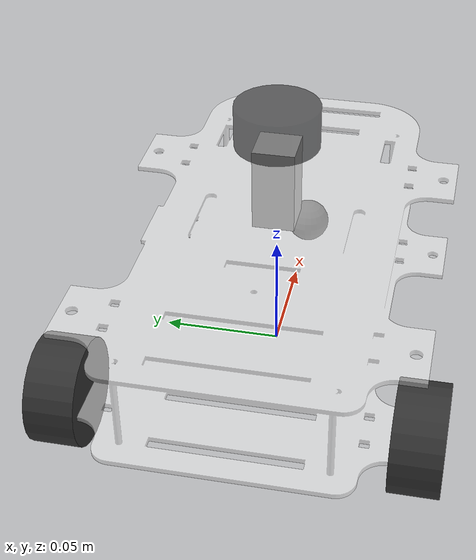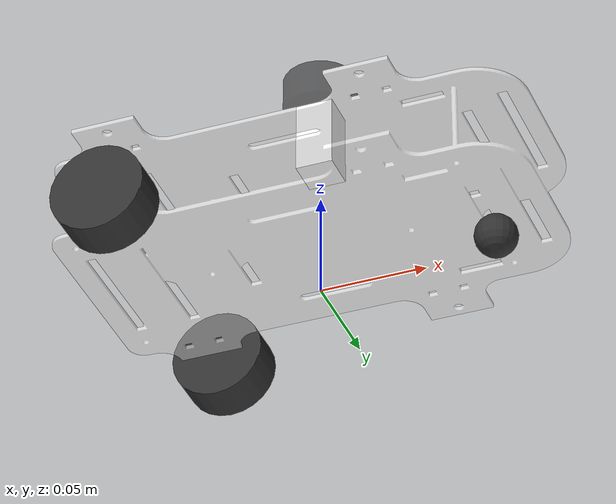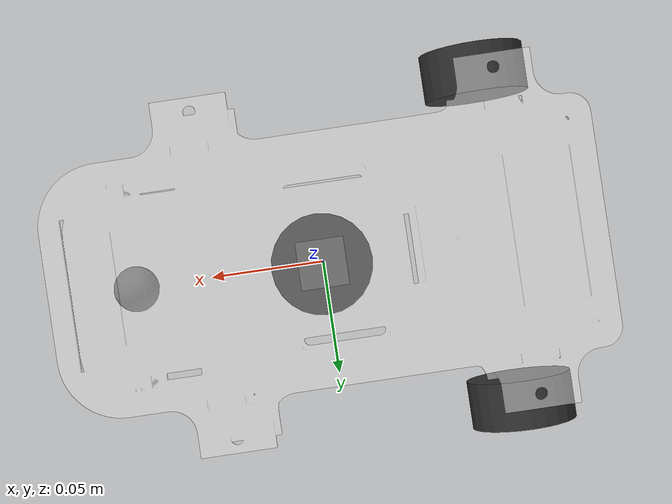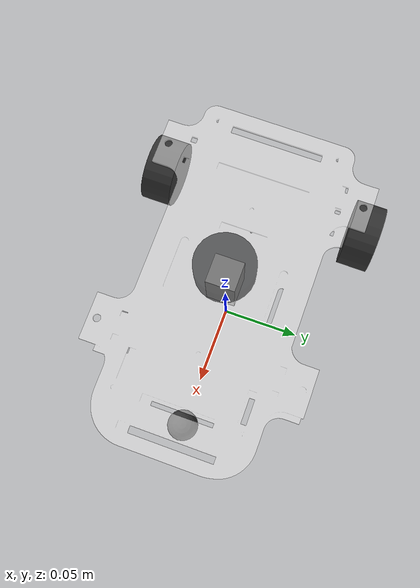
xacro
<?xml version="1.0"?>
<robot xmlns:xacro="http://www.ros.org/wiki/xacro" name="uds_bot">

    <xacro:property name="M_PI" value="3.1415926535897931" />

    <xacro:arg name="robot_name" default="uds_robot"/>
    <xacro:arg name="prefix" default=""/>
    <xacro:arg name="use_gazebo" default="false"/>

    <xacro:include filename="$(find uds_description)/urdf/body/uds_base.urdf.xacro"/>
    <xacro:include filename="$(find uds_description)/urdf/sensors/lidar.urdf.xacro"/>
    <xacro:include filename="$(find uds_description)/urdf/body/uds_wheel.urdf.xacro"/>
    <xacro:include filename="$(find uds_description)/urdf/body/uds_castor.urdf.xacro"/>
    <xacro:include filename="$(find uds_description)/urdf/ros2_control/uds_ros2_control.xacro"/>

    <xacro:uds_base
    prefix="$(arg prefix)"
    z_off="${wheel_radius}"/>  <!--Wheel Radius-->

    <xacro:lidar_sensor
    prefix="$(arg prefix)"
    z_off="${lidar_height}"/>

    <xacro:uds_wheel
      prefix="$(arg prefix)"
      side="left"
      x_reflect="-1"
      y_reflect="1"/>

    <xacro:uds_wheel
      prefix="$(arg prefix)"
      side="right"
      x_reflect="-1"
      y_reflect="-1"/>

    <xacro:uds_castor
      prefix="$(arg prefix)"/>

</robot>

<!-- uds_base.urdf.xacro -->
<robot xmlns:xacro="http://www.ros.org/wiki/xacro">
<xacro:property name="base_width" value="0.14" />
<xacro:property name="base_length" value="0.22" />
<xacro:property name="base_height" value="0.002" />
<xacro:property name="com_x" value="0.00489" />     <!--Center of Mass-->
<xacro:property name="com_y" value="-0.00007433" />
<xacro:property name="com_z" value="0.001" />
<xacro:property name="base_mass" value="1.5" />

<xacro:macro name="uds_base" params="prefix z_off">
    <link name="base_footprint"/>
    <link name="${prefix}base_link">
        <visual>
            <geometry>
                <mesh filename="package://uds_description/meshes/assembled.stl" scale="0.001 0.001 0.001"/>
            </geometry>
            <origin xyz="0 0 0" rpy="0 0 ${pi/2}"/>
            <material name="white">
                <color rgba="1 1 1 0.5"/>
            </material>
            <origin xyz="0 0 0" rpy="0 0 0"/>
        </visual>
        <collision>
            <geometry>
                <box size="${base_length} ${base_width} ${base_height}"/>
            </geometry>
            <origin xyz="0 0 0" rpy="0 0 0"/>
        </collision>
        <inertial>
            <origin xyz="${com_x} ${com_y} ${com_z}" rpy="0 0 0"/>
            <mass value="${base_mass}"/>
            <inertia ixx="${(1/12) * base_mass * ((base_width * base_width) + (base_height * base_height))}"  ixy="0.0"  ixz="0.0"
                     iyy="${(1/12) * base_mass * ((base_length * base_length) + (base_height * base_height))}"  iyz="0.0"
                     izz="${(1/12) * base_mass * ((base_length * base_length) + (base_width * base_width))}"/>
        </inertial>
    </link>
    <gazebo reference="${prefix}base_link">
        <visual>
            <material>
                <ambient>0.5 0.5 0.5 0.5</ambient>
                <diffuse>0.5 0.5 0.5 0.5</diffuse>
                <specular>0.2 0.2 0.2 0.5</specular>
            </material>
        </visual>
    </gazebo>
    <joint name="${prefix}base_joint" type="fixed">
        <parent link="${prefix}base_footprint"/>
        <child link="${prefix}base_link"/>
        <origin xyz="0 0 ${z_off}" rpy="0 0 0"/>
  </joint>
</xacro:macro>
</robot>

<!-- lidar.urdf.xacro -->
<robot xmlns:xacro="http://www.ros.org/wiki/xacro">
  <xacro:property name="M_PI" value="3.1415926535897931" />
  <xacro:property name="lidar_mass" value="0.10321" />
  <xacro:property name="lidar_length" value="0.035" />
  <xacro:property name="lidar_width" value="0.035" />
  <xacro:property name="lidar_height" value="0.035" />
  <xacro:property name="com_x" value="-0.000082" />     <!--Center of Mass-->
  <xacro:property name="com_y" value="-0.000041" />
  <xacro:property name="com_z" value="0.010541" />
  <xacro:property name="stand_height" value="${lidar_height}" />

  <xacro:macro name="lidar_sensor" params="prefix z_off">
    <link name="lidar_stand_link">
        <visual>
        <origin xyz="0 0 0" rpy="0 0 0"/>
        <geometry>
          <box size="${0.5*lidar_length} ${0.5*lidar_width} ${stand_height}"/>
        </geometry>
        <material name="white">
          <color rgba="1 1 1 1.0"/>
        </material>
      </visual>

      <inertial>
          <origin xyz="${com_x} ${com_y} ${com_z}" rpy="0 0 0"/>
          <mass value="${base_mass}"/>
          <inertia ixx="${(1/12) * lidar_mass * ((lidar_width * lidar_width) + (lidar_height * lidar_height))}"  ixy="0.0"  ixz="0.0"
                    iyy="${(1/12) * lidar_mass * ((lidar_length * lidar_length) + (lidar_height * lidar_height))}"  iyz="0.0"
                    izz="${(1/12) * lidar_mass * ((lidar_length * lidar_length) + (lidar_width * lidar_width))}"/>
      </inertial>
    </link>

    <joint name="$lidar_stand_joint" type="fixed">
      <parent link="base_link"/>
      <child link="lidar_stand_link"/>
      <origin xyz="0 0 ${stand_height/2 + 0.04 + 0.002}" rpy="0 0 0"/>  <!-- 1/2 stand_height + stud_length + width of chasis-->
    </joint>
    <link name="lidar_link">
      <visual>
        <origin xyz="0 0 0" rpy="0 0 0"/>
        <geometry>
          <cylinder radius="${lidar_width/2}" length="${lidar_height/2}"/>
        </geometry>
        <material name="black">
          <color rgba="0 0 0 0.5"/>
        </material>
      </visual>

      <inertial>
          <origin xyz="${com_x} ${com_y} ${com_z}" rpy="0 0 0"/>
          <mass value="${lidar_mass*1.25}"/>
          <inertia ixx="${(1/12) * lidar_mass * ((lidar_width * lidar_width) + (lidar_height * lidar_height))}"  ixy="0.0"  ixz="0.0"
                    iyy="${(1/12) * lidar_mass * ((lidar_length * lidar_length) + (lidar_height * lidar_height))}"  iyz="0.0"
                    izz="${(1/12) * lidar_mass * ((lidar_length * lidar_length) + (lidar_width * lidar_width))}"/>
      </inertial>
    </link>

    <joint name="${prefix}lidar_joint" type="fixed">
      <parent link="lidar_stand_link"/>
      <child link="lidar_link"/>
      <origin xyz="0 0 ${stand_height/2 + lidar_height/4}" rpy="0 0 0"/>
    </joint>
  </xacro:macro>

  <gazebo reference="lidar_link">
      <sensor name="laser" type="gpu_lidar">
         <pose> 0 0 0 0 0 0 </pose>
         <always_on>true</always_on>
         <visualize>true</visualize>
         <update_rate>10</update_rate>
         <topic>scan</topic>
         <gz_frame_id>lidar_link</gz_frame_id>
         <lidar>
            <scan>
               <horizontal>
               <samples>360</samples>
               <min_angle>-3.14</min_angle>
               <max_angle>3.14</max_angle>
               </horizontal>
            </scan>
            <range>
               <min>0.3</min>
               <max>12</max>
            </range>
         </lidar>
      </sensor>
   </gazebo>
</robot>

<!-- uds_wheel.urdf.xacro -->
<robot xmlns:xacro="http://www.ros.org/wiki/xacro">

  <xacro:property name="wheel_radius" value="0.022" />
  <xacro:property name="wheel_offset" value="0.0000" />

  <xacro:property name="wheel_separation" value="0.134" />
  <xacro:property name="wheel_width" value="0.02" />
  <xacro:property name="wheel_mass" value="0.1" />
  <xacro:property name="wheel_xoff" value="0.075" />
  <xacro:property name="wheel_yoff" value="0.070" />

  <xacro:macro name="uds_wheel" params="prefix side x_reflect y_reflect">
    <link name="${prefix}${side}_wheel_link">
      <visual>
        <origin xyz="0 0 0" rpy="${pi/2} 0 0"/>
        <geometry>
          <cylinder radius="${wheel_radius + wheel_offset}" length="${wheel_width}"/>
        </geometry>
        <material name="dark_gray">
          <color rgba="0.2 0.2 0.2 1.0"/>
        </material>
      </visual>

      <collision>
        <origin xyz="0 0 0" rpy="${pi/2} 0 0"/>
        <geometry>
          <cylinder radius="${wheel_radius + wheel_offset}" length="${wheel_width}"/>
        </geometry>
      </collision>

      <inertial>
        <origin xyz="0 0 0" rpy="0 0 0"/>
        <mass value="${wheel_mass}"/>
        <inertia
          ixx="${(wheel_mass/12.0) * (3*wheel_radius*wheel_radius + wheel_width*wheel_width)}" ixy="0" ixz="0"
          iyy="${(wheel_mass/2.0) * (wheel_radius*wheel_radius)}" iyz="0"
          izz="${(wheel_mass/12.0) * (3*wheel_radius*wheel_radius + wheel_width*wheel_width)}"/>
      </inertial>
    </link>

    <joint name="${prefix}${side}_wheel_joint" type="continuous">
      <axis xyz="0 1 0"/>
      <parent link="${prefix}base_link"/>
      <child link="${prefix}${side}_wheel_link"/>
      <origin xyz="${x_reflect*(wheel_xoff) } ${y_reflect*(wheel_yoff)} 0" rpy="0 0 0"/>
    </joint>
  </xacro:macro>

  <gazebo reference="base_link">
      <mu1>1.0</mu1>
      <mu2>1.0</mu2>
  </gazebo>

  <gazebo reference="right_wheel_link">
      <mu1>1.0</mu1>
      <mu2>1.0</mu2>
  </gazebo>

  <gazebo reference="left_wheel_link">
      <mu1>1.0</mu1>
      <mu2>1.0</mu2>
  </gazebo>

  <!-- Caster Wheels -->
  <gazebo reference="castor_link">
      <mu1>0.000001</mu1>
      <mu2>0.000001</mu2>
  </gazebo>
</robot>

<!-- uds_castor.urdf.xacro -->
<robot xmlns:xacro="http://www.ros.org/wiki/xacro">
<xacro:property name="castor_mass" value="0.5" />
<xacro:property name="castor_xoff" value="0.0825" />
<xacro:property name="castor_yoff" value="0.0" />

<xacro:macro name="uds_castor" params="prefix">
    <link name="${prefix}castor_link">
      <visual>
        <origin xyz="0 0 0" rpy="0 0 0"/>
        <geometry>
          <sphere radius="${(wheel_radius-base_height)/2}"/>
        </geometry>
        <material name="dark_gray">
          <color rgba="0.2 0.2 0.2 1"/>
        </material>
      </visual>

      <collision>
        <origin xyz="0 0 0" rpy="0 0 0"/>
        <geometry>
          <sphere radius="${(wheel_radius-base_height)/2}"/>
        </geometry>
      </collision>

        <inertial>
            <origin xyz="0 0 0" rpy="0 0 0"/>
            <mass value="${castor_mass}"/>
            <inertia
            ixx="${(2.0/5.0) * castor_mass * wheel_radius/2 * wheel_radius/2}" ixy="0" ixz="0"
            iyy="${(2.0/5.0) * castor_mass * wheel_radius/2 * wheel_radius/2}" iyz="0"
            izz="${(2.0/5.0) * castor_mass * wheel_radius/2 * wheel_radius/2}"/>
      </inertial>
    </link>

    <joint name="${prefix}castor_joint" type="fixed">
      <parent link="${prefix}base_link"/>
      <child link="${prefix}castor_link"/>
      <origin xyz="${castor_xoff} ${castor_yoff} ${-(wheel_radius/2 +base_height)}" rpy="0 0 0"/>
    </joint>
</xacro:macro>

</robot>
